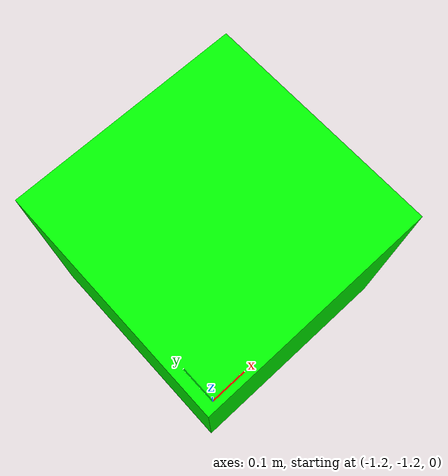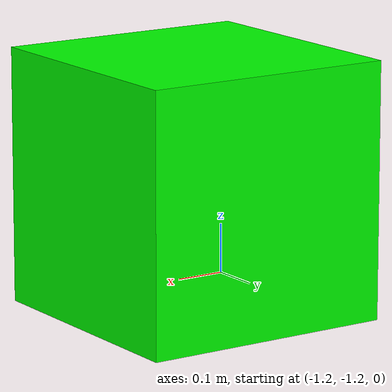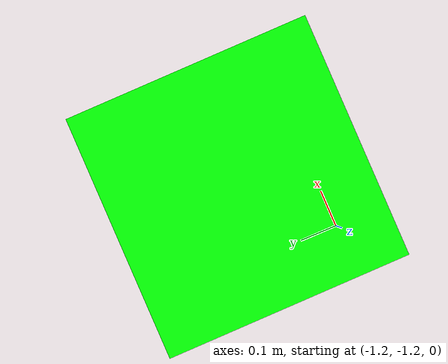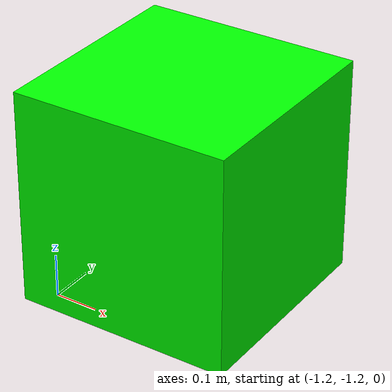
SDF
<sdf version='1.9'>
  <model name='box'>
    <link name='greenbox'>
      <inertial>
        <pose>-2 -2 0.5 0 0 0</pose>
        <mass>1</mass>
        <inertia>
          <ixx>0</ixx>
          <ixy>0</ixy>
          <ixz>0</ixz>
          <iyy>0</iyy>
          <iyz>0</iyz>
          <izz>0</izz>
        </inertia>
      </inertial>
      <collision name='greenbox_link1_collision'>
        <pose>-1 -1 0.25 0 0 0</pose>
        <geometry>
          <box>
            <size>0.5 0.5 0.5</size>
          </box>
        </geometry>
      </collision>
      <visual name='greenbox_link1_visual'>
        <pose>-1 -1 0.25 0 0 0</pose>
        <geometry>
          <box>
            <size>0.5 0.5 0.5</size>
          </box>
        </geometry>
        <material>
          <diffuse>0 1 0 1</diffuse>
          <ambient>0 1 0 1</ambient>
        </material>
      </visual>
    </link>
    <frame name='greenbox_joint1' attached_to='greenbox'>
      <pose>-1 -1 0.25 0 -0 0</pose>
    </frame>
    <frame name='greenbox_link1' attached_to='greenbox_joint1'/>
  </model>
</sdf>
